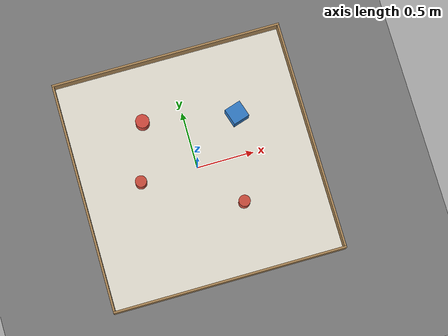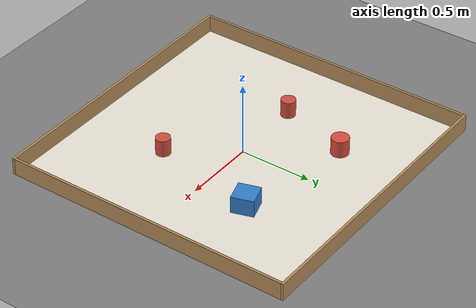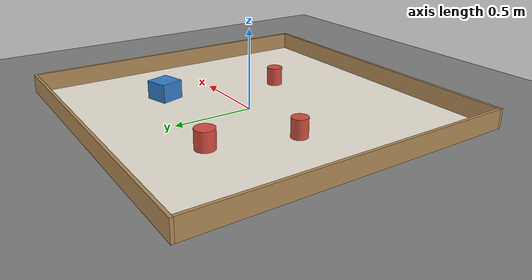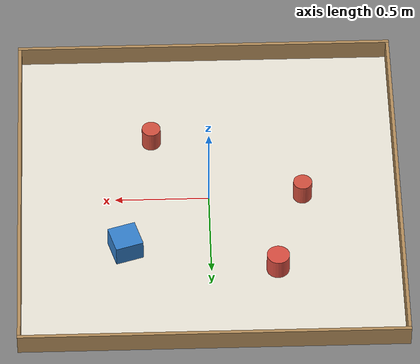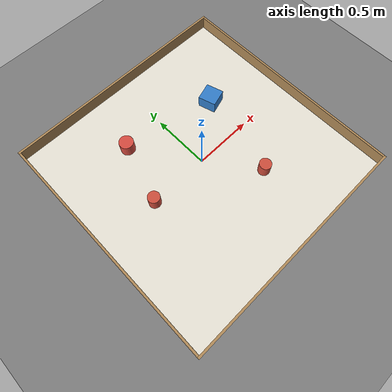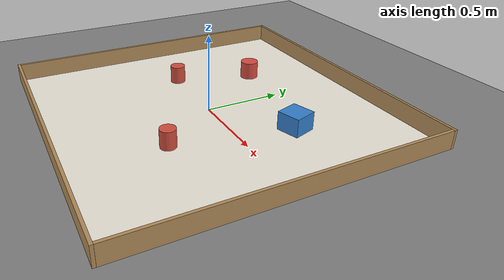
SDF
<?xml version="1.0"?>
<!-- 2 x 2 m Physical AI arenasi. Duvarlar 18 mm MDF, 12 cm yukseklik. -->
<sdf version="1.9">
  <world name="arena">
    <physics name="1ms" type="ignored">
      <max_step_size>0.001</max_step_size>
      <real_time_factor>1.0</real_time_factor>
    </physics>

    <plugin filename="gz-sim-physics-system" name="gz::sim::systems::Physics"/>
    <plugin filename="gz-sim-user-commands-system" name="gz::sim::systems::UserCommands"/>
    <plugin filename="gz-sim-scene-broadcaster-system" name="gz::sim::systems::SceneBroadcaster"/>
    <plugin filename="gz-sim-sensors-system" name="gz::sim::systems::Sensors">
      <render_engine>ogre2</render_engine>
    </plugin>
    <plugin filename="gz-sim-imu-system" name="gz::sim::systems::Imu"/>

    <light type="directional" name="sun">
      <cast_shadows>true</cast_shadows>
      <pose>0 0 10 0 0 0</pose>
      <diffuse>0.9 0.9 0.9 1</diffuse>
      <specular>0.2 0.2 0.2 1</specular>
      <direction>-0.3 0.2 -0.9</direction>
    </light>

    <model name="ground_plane">
      <static>true</static>
      <link name="link">
        <collision name="collision">
          <geometry><plane><normal>0 0 1</normal><size>10 10</size></plane></geometry>
        </collision>
        <visual name="visual">
          <geometry><plane><normal>0 0 1</normal><size>10 10</size></plane></geometry>
          <material><ambient>0.5 0.5 0.5 1</ambient><diffuse>0.5 0.5 0.5 1</diffuse></material>
        </visual>
      </link>
    </model>

    <!-- Arena zemini (sadece gorsel) -->
    <model name="arena_floor">
      <static>true</static>
      <pose>0 0 0.001 0 0 0</pose>
      <link name="link">
        <visual name="visual">
          <geometry><box><size>2 2 0.002</size></box></geometry>
          <material><ambient>0.92 0.9 0.85 1</ambient><diffuse>0.92 0.9 0.85 1</diffuse></material>
        </visual>
      </link>
    </model>

    <!-- Duvarlar: ic olcu tam 2 x 2 m -->
    <model name="arena_walls">
      <static>true</static>
      <link name="link">
        <collision name="north_c"><pose>0 1.009 0.06 0 0 0</pose><geometry><box><size>2.036 0.018 0.12</size></box></geometry></collision>
        <visual name="north_v"><pose>0 1.009 0.06 0 0 0</pose><geometry><box><size>2.036 0.018 0.12</size></box></geometry>
          <material><ambient>0.7 0.55 0.35 1</ambient><diffuse>0.7 0.55 0.35 1</diffuse></material></visual>

        <collision name="south_c"><pose>0 -1.009 0.06 0 0 0</pose><geometry><box><size>2.036 0.018 0.12</size></box></geometry></collision>
        <visual name="south_v"><pose>0 -1.009 0.06 0 0 0</pose><geometry><box><size>2.036 0.018 0.12</size></box></geometry>
          <material><ambient>0.7 0.55 0.35 1</ambient><diffuse>0.7 0.55 0.35 1</diffuse></material></visual>

        <collision name="east_c"><pose>1.009 0 0.06 0 0 0</pose><geometry><box><size>0.018 2.0 0.12</size></box></geometry></collision>
        <visual name="east_v"><pose>1.009 0 0.06 0 0 0</pose><geometry><box><size>0.018 2.0 0.12</size></box></geometry>
          <material><ambient>0.7 0.55 0.35 1</ambient><diffuse>0.7 0.55 0.35 1</diffuse></material></visual>

        <collision name="west_c"><pose>-1.009 0 0.06 0 0 0</pose><geometry><box><size>0.018 2.0 0.12</size></box></geometry></collision>
        <visual name="west_v"><pose>-1.009 0 0.06 0 0 0</pose><geometry><box><size>0.018 2.0 0.12</size></box></geometry>
          <material><ambient>0.7 0.55 0.35 1</ambient><diffuse>0.7 0.55 0.35 1</diffuse></material></visual>
      </link>
    </model>

    <!-- Sabit engeller (senaryoya gore degistirilecek) -->
    <model name="obstacle_box">
      <static>true</static>
      <pose>0.45 0.35 0.06 0 0 0.3</pose>
      <link name="link">
        <collision name="c"><geometry><box><size>0.15 0.15 0.12</size></box></geometry></collision>
        <visual name="v"><geometry><box><size>0.15 0.15 0.12</size></box></geometry>
          <material><ambient>0.2 0.5 0.8 1</ambient><diffuse>0.2 0.5 0.8 1</diffuse></material></visual>
      </link>
    </model>

    <model name="obstacle_cylinder">
      <static>true</static>
      <pose>-0.35 0.5 0.06 0 0 0</pose>
      <link name="link">
        <collision name="c"><geometry><cylinder><radius>0.06</radius><length>0.12</length></cylinder></geometry></collision>
        <visual name="v"><geometry><cylinder><radius>0.06</radius><length>0.12</length></cylinder></geometry>
          <material><ambient>0.85 0.3 0.25 1</ambient><diffuse>0.85 0.3 0.25 1</diffuse></material></visual>
      </link>
    </model>

    <!-- Hareketli engeller ("sahadaki Pico robotlar"). Hareketi moving_obstacles_node verir;
         yaricap ve baslangic konumu pai_gym/world.py default_obstacles() ile ayni olmali. -->
    <model name="moving_1">
      <static>true</static>
      <pose>0.3 -0.4 0.06 0 0 0</pose>
      <link name="link">
        <collision name="c"><geometry><cylinder><radius>0.05</radius><length>0.12</length></cylinder></geometry></collision>
        <visual name="v"><geometry><cylinder><radius>0.05</radius><length>0.12</length></cylinder></geometry>
          <material><ambient>0.82 0.31 0.24 1</ambient><diffuse>0.82 0.31 0.24 1</diffuse></material></visual>
      </link>
    </model>

    <model name="moving_2">
      <static>true</static>
      <pose>-0.5 0 0.06 0 0 0</pose>
      <link name="link">
        <collision name="c"><geometry><cylinder><radius>0.05</radius><length>0.12</length></cylinder></geometry></collision>
        <visual name="v"><geometry><cylinder><radius>0.05</radius><length>0.12</length></cylinder></geometry>
          <material><ambient>0.82 0.31 0.24 1</ambient><diffuse>0.82 0.31 0.24 1</diffuse></material></visual>
      </link>
    </model>
  </world>
</sdf>
